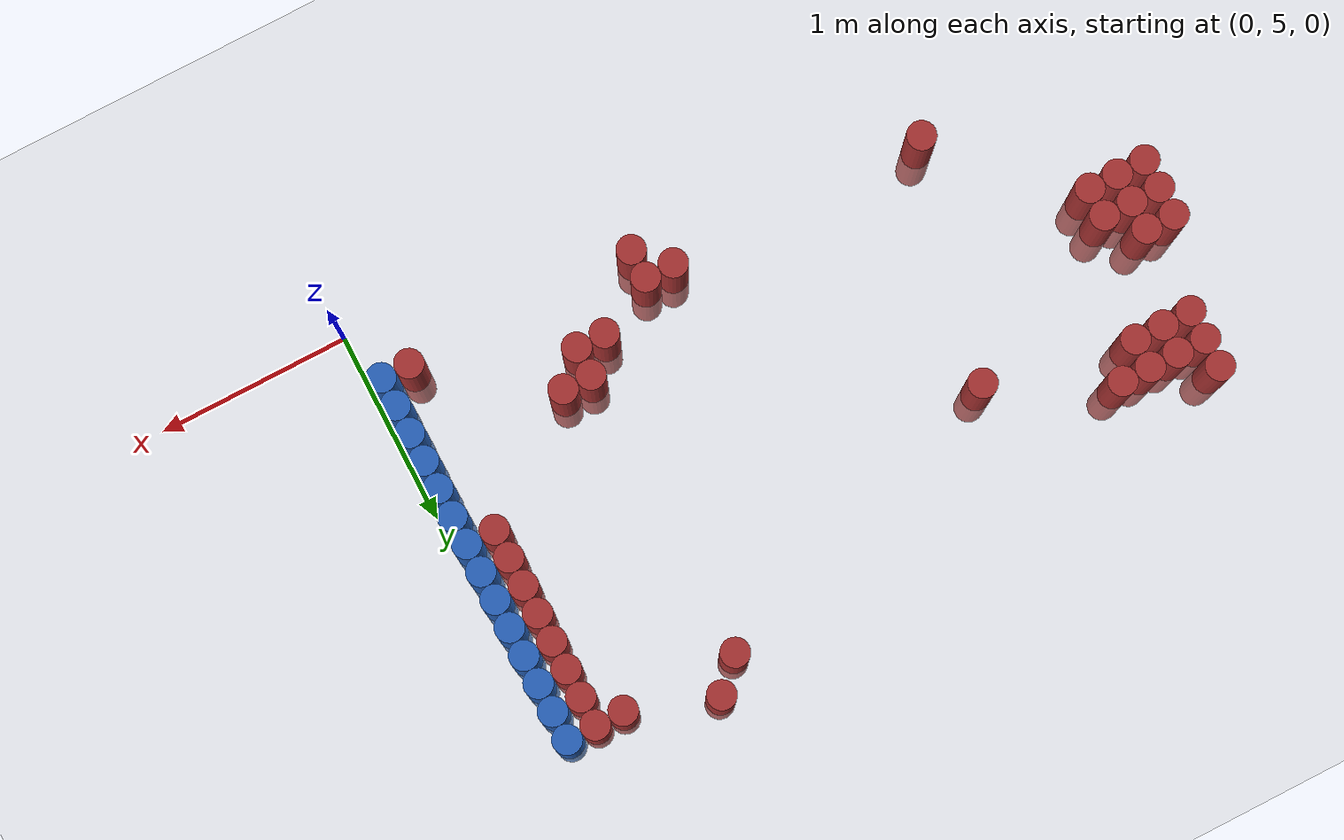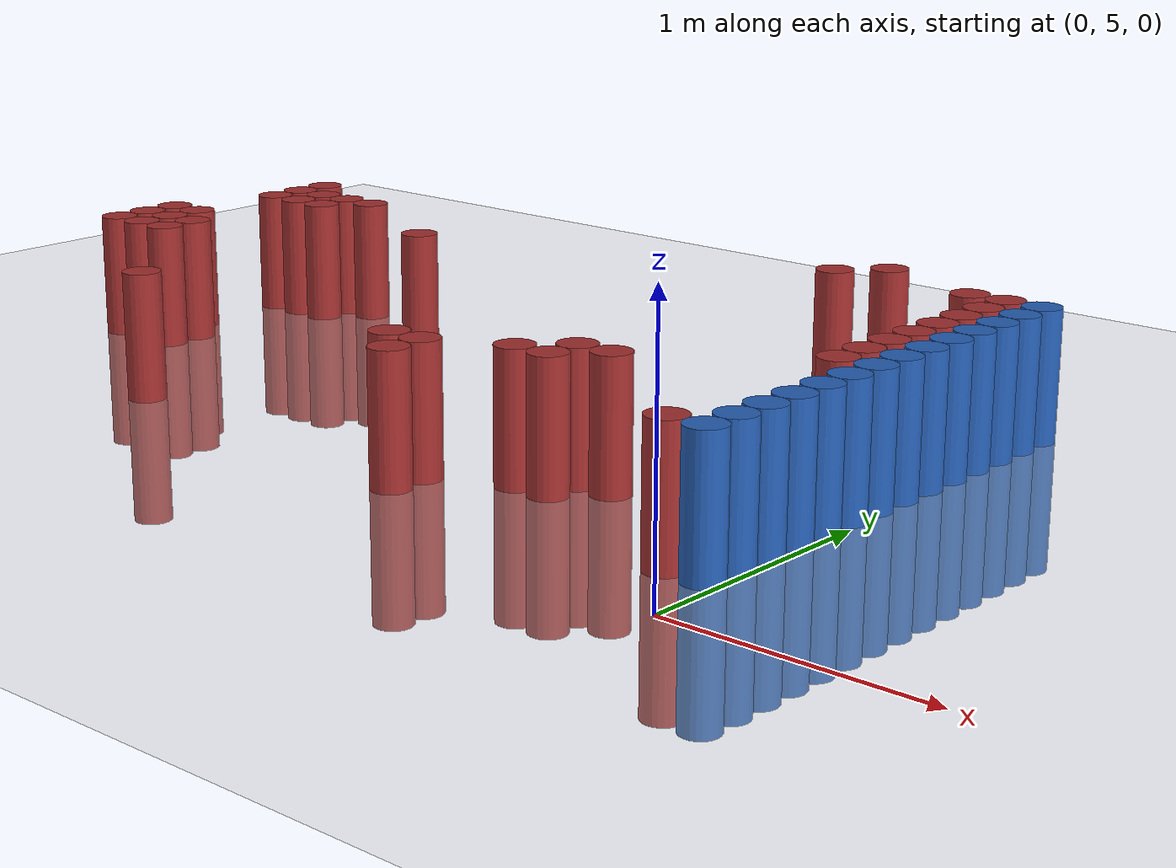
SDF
<sdf version="1.6">
 <world name="default">
  <model name="ground_plane">
   <static>1</static>
   <link name="link">
    <collision name="collision">
     <geometry><plane><normal>0 0 1</normal><size>100 100</size></plane></geometry>
     <surface><friction><ode><mu>100</mu><mu2>50</mu2></ode></friction></surface>
    </collision>
    <visual name="visual">
     <cast_shadows>0</cast_shadows>
     <geometry><plane><normal>0 0 1</normal><size>100 100</size></plane></geometry>
     <material>
      <script><uri>file://media/materials/scripts/gazebo.material</uri><name>Gazebo/Grey</name></script>
     </material>
    </visual>
   </link>
  </model>
  <model name="unit_cylinder_152">
   <static>1</static>
   <pose>-3.825000 6.075000 0.000000 0.000000 0.000000 0.000000</pose>
   <link name="link">
    <inertial>
     <mass>1</mass>
     <inertia><ixx>0.145833</ixx><ixy>0</ixy><ixz>0</ixz><iyy>0.145833</iyy><iyz>0</iyz><izz>0.125</izz></inertia>
    </inertial>
    <collision name="collision">
     <geometry><cylinder><radius>0.075000</radius><length>1</length></cylinder></geometry>
    </collision>
    <visual name="visual">
     <geometry><cylinder><radius>0.075000</radius><length>1</length></cylinder></geometry>
     <material>
      <ambient>0.648000 0.192000 0.192000 1</ambient>
      <diffuse>0.648000 0.192000 0.192000 1</diffuse>
     </material>
     <material>
      <script><name>Gazebo/Grey</name><uri>file://media/materials/scripts/gazebo.material</uri></script>
     </material>
    </visual>
   </link>
  </model>
  <model name="unit_cylinder_153">
   <static>1</static>
   <pose>-3.825000 6.225000 0.000000 0.000000 0.000000 0.000000</pose>
   <link name="link">
    <inertial>
     <mass>1</mass>
     <inertia><ixx>0.145833</ixx><ixy>0</ixy><ixz>0</ixz><iyy>0.145833</iyy><iyz>0</iyz><izz>0.125</izz></inertia>
    </inertial>
    <collision name="collision">
     <geometry><cylinder><radius>0.075000</radius><length>1</length></cylinder></geometry>
    </collision>
    <visual name="visual">
     <geometry><cylinder><radius>0.075000</radius><length>1</length></cylinder></geometry>
     <material>
      <ambient>0.648000 0.192000 0.192000 1</ambient>
      <diffuse>0.648000 0.192000 0.192000 1</diffuse>
     </material>
     <material>
      <script><name>Gazebo/Grey</name><uri>file://media/materials/scripts/gazebo.material</uri></script>
     </material>
    </visual>
   </link>
  </model>
  <model name="unit_cylinder_154">
   <static>1</static>
   <pose>-3.825000 6.375000 0.000000 0.000000 0.000000 0.000000</pose>
   <link name="link">
    <inertial>
     <mass>1</mass>
     <inertia><ixx>0.145833</ixx><ixy>0</ixy><ixz>0</ixz><iyy>0.145833</iyy><iyz>0</iyz><izz>0.125</izz></inertia>
    </inertial>
    <collision name="collision">
     <geometry><cylinder><radius>0.075000</radius><length>1</length></cylinder></geometry>
    </collision>
    <visual name="visual">
     <geometry><cylinder><radius>0.075000</radius><length>1</length></cylinder></geometry>
     <material>
      <ambient>0.648000 0.192000 0.192000 1</ambient>
      <diffuse>0.648000 0.192000 0.192000 1</diffuse>
     </material>
     <material>
      <script><name>Gazebo/Grey</name><uri>file://media/materials/scripts/gazebo.material</uri></script>
     </material>
    </visual>
   </link>
  </model>
  <model name="unit_cylinder_156">
   <static>1</static>
   <pose>-3.675000 6.075000 0.000000 0.000000 0.000000 0.000000</pose>
   <link name="link">
    <inertial>
     <mass>1</mass>
     <inertia><ixx>0.145833</ixx><ixy>0</ixy><ixz>0</ixz><iyy>0.145833</iyy><iyz>0</iyz><izz>0.125</izz></inertia>
    </inertial>
    <collision name="collision">
     <geometry><cylinder><radius>0.075000</radius><length>1</length></cylinder></geometry>
    </collision>
    <visual name="visual">
     <geometry><cylinder><radius>0.075000</radius><length>1</length></cylinder></geometry>
     <material>
      <ambient>0.648000 0.192000 0.192000 1</ambient>
      <diffuse>0.648000 0.192000 0.192000 1</diffuse>
     </material>
     <material>
      <script><name>Gazebo/Grey</name><uri>file://media/materials/scripts/gazebo.material</uri></script>
     </material>
    </visual>
   </link>
  </model>
  <model name="unit_cylinder_157">
   <static>1</static>
   <pose>-3.675000 6.225000 0.000000 0.000000 0.000000 0.000000</pose>
   <link name="link">
    <inertial>
     <mass>1</mass>
     <inertia><ixx>0.145833</ixx><ixy>0</ixy><ixz>0</ixz><iyy>0.145833</iyy><iyz>0</iyz><izz>0.125</izz></inertia>
    </inertial>
    <collision name="collision">
     <geometry><cylinder><radius>0.075000</radius><length>1</length></cylinder></geometry>
    </collision>
    <visual name="visual">
     <geometry><cylinder><radius>0.075000</radius><length>1</length></cylinder></geometry>
     <material>
      <ambient>0.648000 0.192000 0.192000 1</ambient>
      <diffuse>0.648000 0.192000 0.192000 1</diffuse>
     </material>
     <material>
      <script><name>Gazebo/Grey</name><uri>file://media/materials/scripts/gazebo.material</uri></script>
     </material>
    </visual>
   </link>
  </model>
  <model name="unit_cylinder_158">
   <static>1</static>
   <pose>-3.675000 6.375000 0.000000 0.000000 0.000000 0.000000</pose>
   <link name="link">
    <inertial>
     <mass>1</mass>
     <inertia><ixx>0.145833</ixx><ixy>0</ixy><ixz>0</ixz><iyy>0.145833</iyy><iyz>0</iyz><izz>0.125</izz></inertia>
    </inertial>
    <collision name="collision">
     <geometry><cylinder><radius>0.075000</radius><length>1</length></cylinder></geometry>
    </collision>
    <visual name="visual">
     <geometry><cylinder><radius>0.075000</radius><length>1</length></cylinder></geometry>
     <material>
      <ambient>0.648000 0.192000 0.192000 1</ambient>
      <diffuse>0.648000 0.192000 0.192000 1</diffuse>
     </material>
     <material>
      <script><name>Gazebo/Grey</name><uri>file://media/materials/scripts/gazebo.material</uri></script>
     </material>
    </visual>
   </link>
  </model>
  <model name="unit_cylinder_159">
   <static>1</static>
   <pose>-3.675000 6.825000 0.000000 0.000000 0.000000 0.000000</pose>
   <link name="link">
    <inertial>
     <mass>1</mass>
     <inertia><ixx>0.145833</ixx><ixy>0</ixy><ixz>0</ixz><iyy>0.145833</iyy><iyz>0</iyz><izz>0.125</izz></inertia>
    </inertial>
    <collision name="collision">
     <geometry><cylinder><radius>0.075000</radius><length>1</length></cylinder></geometry>
    </collision>
    <visual name="visual">
     <geometry><cylinder><radius>0.075000</radius><length>1</length></cylinder></geometry>
     <material>
      <ambient>0.648000 0.192000 0.192000 1</ambient>
      <diffuse>0.648000 0.192000 0.192000 1</diffuse>
     </material>
     <material>
      <script><name>Gazebo/Grey</name><uri>file://media/materials/scripts/gazebo.material</uri></script>
     </material>
    </visual>
   </link>
  </model>
  <model name="unit_cylinder_160">
   <static>1</static>
   <pose>-3.675000 6.975000 0.000000 0.000000 0.000000 0.000000</pose>
   <link name="link">
    <inertial>
     <mass>1</mass>
     <inertia><ixx>0.145833</ixx><ixy>0</ixy><ixz>0</ixz><iyy>0.145833</iyy><iyz>0</iyz><izz>0.125</izz></inertia>
    </inertial>
    <collision name="collision">
     <geometry><cylinder><radius>0.075000</radius><length>1</length></cylinder></geometry>
    </collision>
    <visual name="visual">
     <geometry><cylinder><radius>0.075000</radius><length>1</length></cylinder></geometry>
     <material>
      <ambient>0.648000 0.192000 0.192000 1</ambient>
      <diffuse>0.648000 0.192000 0.192000 1</diffuse>
     </material>
     <material>
      <script><name>Gazebo/Grey</name><uri>file://media/materials/scripts/gazebo.material</uri></script>
     </material>
    </visual>
   </link>
  </model>
  <model name="unit_cylinder_161">
   <static>1</static>
   <pose>-3.675000 7.125000 0.000000 0.000000 0.000000 0.000000</pose>
   <link name="link">
    <inertial>
     <mass>1</mass>
     <inertia><ixx>0.145833</ixx><ixy>0</ixy><ixz>0</ixz><iyy>0.145833</iyy><iyz>0</iyz><izz>0.125</izz></inertia>
    </inertial>
    <collision name="collision">
     <geometry><cylinder><radius>0.075000</radius><length>1</length></cylinder></geometry>
    </collision>
    <visual name="visual">
     <geometry><cylinder><radius>0.075000</radius><length>1</length></cylinder></geometry>
     <material>
      <ambient>0.648000 0.192000 0.192000 1</ambient>
      <diffuse>0.648000 0.192000 0.192000 1</diffuse>
     </material>
     <material>
      <script><name>Gazebo/Grey</name><uri>file://media/materials/scripts/gazebo.material</uri></script>
     </material>
    </visual>
   </link>
  </model>
  <model name="unit_cylinder_162">
   <static>1</static>
   <pose>-3.525000 6.075000 0.000000 0.000000 0.000000 0.000000</pose>
   <link name="link">
    <inertial>
     <mass>1</mass>
     <inertia><ixx>0.145833</ixx><ixy>0</ixy><ixz>0</ixz><iyy>0.145833</iyy><iyz>0</iyz><izz>0.125</izz></inertia>
    </inertial>
    <collision name="collision">
     <geometry><cylinder><radius>0.075000</radius><length>1</length></cylinder></geometry>
    </collision>
    <visual name="visual">
     <geometry><cylinder><radius>0.075000</radius><length>1</length></cylinder></geometry>
     <material>
      <ambient>0.648000 0.192000 0.192000 1</ambient>
      <diffuse>0.648000 0.192000 0.192000 1</diffuse>
     </material>
     <material>
      <script><name>Gazebo/Grey</name><uri>file://media/materials/scripts/gazebo.material</uri></script>
     </material>
    </visual>
   </link>
  </model>
  <model name="unit_cylinder_163">
   <static>1</static>
   <pose>-3.525000 6.225000 0.000000 0.000000 0.000000 0.000000</pose>
   <link name="link">
    <inertial>
     <mass>1</mass>
     <inertia><ixx>0.145833</ixx><ixy>0</ixy><ixz>0</ixz><iyy>0.145833</iyy><iyz>0</iyz><izz>0.125</izz></inertia>
    </inertial>
    <collision name="collision">
     <geometry><cylinder><radius>0.075000</radius><length>1</length></cylinder></geometry>
    </collision>
    <visual name="visual">
     <geometry><cylinder><radius>0.075000</radius><length>1</length></cylinder></geometry>
     <material>
      <ambient>0.648000 0.192000 0.192000 1</ambient>
      <diffuse>0.648000 0.192000 0.192000 1</diffuse>
     </material>
     <material>
      <script><name>Gazebo/Grey</name><uri>file://media/materials/scripts/gazebo.material</uri></script>
     </material>
    </visual>
   </link>
  </model>
  <model name="unit_cylinder_164">
   <static>1</static>
   <pose>-3.525000 6.825000 0.000000 0.000000 0.000000 0.000000</pose>
   <link name="link">
    <inertial>
     <mass>1</mass>
     <inertia><ixx>0.145833</ixx><ixy>0</ixy><ixz>0</ixz><iyy>0.145833</iyy><iyz>0</iyz><izz>0.125</izz></inertia>
    </inertial>
    <collision name="collision">
     <geometry><cylinder><radius>0.075000</radius><length>1</length></cylinder></geometry>
    </collision>
    <visual name="visual">
     <geometry><cylinder><radius>0.075000</radius><length>1</length></cylinder></geometry>
     <material>
      <ambient>0.648000 0.192000 0.192000 1</ambient>
      <diffuse>0.648000 0.192000 0.192000 1</diffuse>
     </material>
     <material>
      <script><name>Gazebo/Grey</name><uri>file://media/materials/scripts/gazebo.material</uri></script>
     </material>
    </visual>
   </link>
  </model>
  <model name="unit_cylinder_165">
   <static>1</static>
   <pose>-3.525000 6.975000 0.000000 0.000000 0.000000 0.000000</pose>
   <link name="link">
    <inertial>
     <mass>1</mass>
     <inertia><ixx>0.145833</ixx><ixy>0</ixy><ixz>0</ixz><iyy>0.145833</iyy><iyz>0</iyz><izz>0.125</izz></inertia>
    </inertial>
    <collision name="collision">
     <geometry><cylinder><radius>0.075000</radius><length>1</length></cylinder></geometry>
    </collision>
    <visual name="visual">
     <geometry><cylinder><radius>0.075000</radius><length>1</length></cylinder></geometry>
     <material>
      <ambient>0.648000 0.192000 0.192000 1</ambient>
      <diffuse>0.648000 0.192000 0.192000 1</diffuse>
     </material>
     <material>
      <script><name>Gazebo/Grey</name><uri>file://media/materials/scripts/gazebo.material</uri></script>
     </material>
    </visual>
   </link>
  </model>
  <model name="unit_cylinder_166">
   <static>1</static>
   <pose>-3.375000 6.825000 0.000000 0.000000 0.000000 0.000000</pose>
   <link name="link">
    <inertial>
     <mass>1</mass>
     <inertia><ixx>0.145833</ixx><ixy>0</ixy><ixz>0</ixz><iyy>0.145833</iyy><iyz>0</iyz><izz>0.125</izz></inertia>
    </inertial>
    <collision name="collision">
     <geometry><cylinder><radius>0.075000</radius><length>1</length></cylinder></geometry>
    </collision>
    <visual name="visual">
     <geometry><cylinder><radius>0.075000</radius><length>1</length></cylinder></geometry>
     <material>
      <ambient>0.648000 0.192000 0.192000 1</ambient>
      <diffuse>0.648000 0.192000 0.192000 1</diffuse>
     </material>
     <material>
      <script><name>Gazebo/Grey</name><uri>file://media/materials/scripts/gazebo.material</uri></script>
     </material>
    </visual>
   </link>
  </model>
  <model name="unit_cylinder_167">
   <static>1</static>
   <pose>-3.375000 6.975000 0.000000 0.000000 0.000000 0.000000</pose>
   <link name="link">
    <inertial>
     <mass>1</mass>
     <inertia><ixx>0.145833</ixx><ixy>0</ixy><ixz>0</ixz><iyy>0.145833</iyy><iyz>0</iyz><izz>0.125</izz></inertia>
    </inertial>
    <collision name="collision">
     <geometry><cylinder><radius>0.075000</radius><length>1</length></cylinder></geometry>
    </collision>
    <visual name="visual">
     <geometry><cylinder><radius>0.075000</radius><length>1</length></cylinder></geometry>
     <material>
      <ambient>0.648000 0.192000 0.192000 1</ambient>
      <diffuse>0.648000 0.192000 0.192000 1</diffuse>
     </material>
     <material>
      <script><name>Gazebo/Grey</name><uri>file://media/materials/scripts/gazebo.material</uri></script>
     </material>
    </visual>
   </link>
  </model>
  <model name="unit_cylinder_168">
   <static>1</static>
   <pose>-3.225000 6.975000 0.000000 0.000000 0.000000 0.000000</pose>
   <link name="link">
    <inertial>
     <mass>1</mass>
     <inertia><ixx>0.145833</ixx><ixy>0</ixy><ixz>0</ixz><iyy>0.145833</iyy><iyz>0</iyz><izz>0.125</izz></inertia>
    </inertial>
    <collision name="collision">
     <geometry><cylinder><radius>0.075000</radius><length>1</length></cylinder></geometry>
    </collision>
    <visual name="visual">
     <geometry><cylinder><radius>0.075000</radius><length>1</length></cylinder></geometry>
     <material>
      <ambient>0.648000 0.192000 0.192000 1</ambient>
      <diffuse>0.648000 0.192000 0.192000 1</diffuse>
     </material>
     <material>
      <script><name>Gazebo/Grey</name><uri>file://media/materials/scripts/gazebo.material</uri></script>
     </material>
    </visual>
   </link>
  </model>
  <model name="unit_cylinder_171">
   <static>1</static>
   <pose>-2.925000 5.475000 0.000000 0.000000 0.000000 0.000000</pose>
   <link name="link">
    <inertial>
     <mass>1</mass>
     <inertia><ixx>0.145833</ixx><ixy>0</ixy><ixz>0</ixz><iyy>0.145833</iyy><iyz>0</iyz><izz>0.125</izz></inertia>
    </inertial>
    <collision name="collision">
     <geometry><cylinder><radius>0.075000</radius><length>1</length></cylinder></geometry>
    </collision>
    <visual name="visual">
     <geometry><cylinder><radius>0.075000</radius><length>1</length></cylinder></geometry>
     <material>
      <ambient>0.648000 0.192000 0.192000 1</ambient>
      <diffuse>0.648000 0.192000 0.192000 1</diffuse>
     </material>
     <material>
      <script><name>Gazebo/Grey</name><uri>file://media/materials/scripts/gazebo.material</uri></script>
     </material>
    </visual>
   </link>
  </model>
  <model name="unit_cylinder_175">
   <static>1</static>
   <pose>-2.625000 6.675000 0.000000 0.000000 0.000000 0.000000</pose>
   <link name="link">
    <inertial>
     <mass>1</mass>
     <inertia><ixx>0.145833</ixx><ixy>0</ixy><ixz>0</ixz><iyy>0.145833</iyy><iyz>0</iyz><izz>0.125</izz></inertia>
    </inertial>
    <collision name="collision">
     <geometry><cylinder><radius>0.075000</radius><length>1</length></cylinder></geometry>
    </collision>
    <visual name="visual">
     <geometry><cylinder><radius>0.075000</radius><length>1</length></cylinder></geometry>
     <material>
      <ambient>0.648000 0.192000 0.192000 1</ambient>
      <diffuse>0.648000 0.192000 0.192000 1</diffuse>
     </material>
     <material>
      <script><name>Gazebo/Grey</name><uri>file://media/materials/scripts/gazebo.material</uri></script>
     </material>
    </visual>
   </link>
  </model>
  <model name="unit_cylinder_180">
   <static>1</static>
   <pose>-1.575000 5.475000 0.000000 0.000000 0.000000 0.000000</pose>
   <link name="link">
    <inertial>
     <mass>1</mass>
     <inertia><ixx>0.145833</ixx><ixy>0</ixy><ixz>0</ixz><iyy>0.145833</iyy><iyz>0</iyz><izz>0.125</izz></inertia>
    </inertial>
    <collision name="collision">
     <geometry><cylinder><radius>0.075000</radius><length>1</length></cylinder></geometry>
    </collision>
    <visual name="visual">
     <geometry><cylinder><radius>0.075000</radius><length>1</length></cylinder></geometry>
     <material>
      <ambient>0.648000 0.192000 0.192000 1</ambient>
      <diffuse>0.648000 0.192000 0.192000 1</diffuse>
     </material>
     <material>
      <script><name>Gazebo/Grey</name><uri>file://media/materials/scripts/gazebo.material</uri></script>
     </material>
    </visual>
   </link>
  </model>
  <model name="unit_cylinder_181">
   <static>1</static>
   <pose>-1.425000 5.325000 0.000000 0.000000 0.000000 0.000000</pose>
   <link name="link">
    <inertial>
     <mass>1</mass>
     <inertia><ixx>0.145833</ixx><ixy>0</ixy><ixz>0</ixz><iyy>0.145833</iyy><iyz>0</iyz><izz>0.125</izz></inertia>
    </inertial>
    <collision name="collision">
     <geometry><cylinder><radius>0.075000</radius><length>1</length></cylinder></geometry>
    </collision>
    <visual name="visual">
     <geometry><cylinder><radius>0.075000</radius><length>1</length></cylinder></geometry>
     <material>
      <ambient>0.648000 0.192000 0.192000 1</ambient>
      <diffuse>0.648000 0.192000 0.192000 1</diffuse>
     </material>
     <material>
      <script><name>Gazebo/Grey</name><uri>file://media/materials/scripts/gazebo.material</uri></script>
     </material>
    </visual>
   </link>
  </model>
  <model name="unit_cylinder_182">
   <static>1</static>
   <pose>-1.425000 5.475000 0.000000 0.000000 0.000000 0.000000</pose>
   <link name="link">
    <inertial>
     <mass>1</mass>
     <inertia><ixx>0.145833</ixx><ixy>0</ixy><ixz>0</ixz><iyy>0.145833</iyy><iyz>0</iyz><izz>0.125</izz></inertia>
    </inertial>
    <collision name="collision">
     <geometry><cylinder><radius>0.075000</radius><length>1</length></cylinder></geometry>
    </collision>
    <visual name="visual">
     <geometry><cylinder><radius>0.075000</radius><length>1</length></cylinder></geometry>
     <material>
      <ambient>0.648000 0.192000 0.192000 1</ambient>
      <diffuse>0.648000 0.192000 0.192000 1</diffuse>
     </material>
     <material>
      <script><name>Gazebo/Grey</name><uri>file://media/materials/scripts/gazebo.material</uri></script>
     </material>
    </visual>
   </link>
  </model>
  <model name="unit_cylinder_183">
   <static>1</static>
   <pose>-1.125000 5.625000 0.000000 0.000000 0.000000 0.000000</pose>
   <link name="link">
    <inertial>
     <mass>1</mass>
     <inertia><ixx>0.145833</ixx><ixy>0</ixy><ixz>0</ixz><iyy>0.145833</iyy><iyz>0</iyz><izz>0.125</izz></inertia>
    </inertial>
    <collision name="collision">
     <geometry><cylinder><radius>0.075000</radius><length>1</length></cylinder></geometry>
    </collision>
    <visual name="visual">
     <geometry><cylinder><radius>0.075000</radius><length>1</length></cylinder></geometry>
     <material>
      <ambient>0.648000 0.192000 0.192000 1</ambient>
      <diffuse>0.648000 0.192000 0.192000 1</diffuse>
     </material>
     <material>
      <script><name>Gazebo/Grey</name><uri>file://media/materials/scripts/gazebo.material</uri></script>
     </material>
    </visual>
   </link>
  </model>
  <model name="unit_cylinder_184">
   <static>1</static>
   <pose>-0.975000 5.625000 0.000000 0.000000 0.000000 0.000000</pose>
   <link name="link">
    <inertial>
     <mass>1</mass>
     <inertia><ixx>0.145833</ixx><ixy>0</ixy><ixz>0</ixz><iyy>0.145833</iyy><iyz>0</iyz><izz>0.125</izz></inertia>
    </inertial>
    <collision name="collision">
     <geometry><cylinder><radius>0.075000</radius><length>1</length></cylinder></geometry>
    </collision>
    <visual name="visual">
     <geometry><cylinder><radius>0.075000</radius><length>1</length></cylinder></geometry>
     <material>
      <ambient>0.648000 0.192000 0.192000 1</ambient>
      <diffuse>0.648000 0.192000 0.192000 1</diffuse>
     </material>
     <material>
      <script><name>Gazebo/Grey</name><uri>file://media/materials/scripts/gazebo.material</uri></script>
     </material>
    </visual>
   </link>
  </model>
  <model name="unit_cylinder_185">
   <static>1</static>
   <pose>-0.975000 5.775000 0.000000 0.000000 0.000000 0.000000</pose>
   <link name="link">
    <inertial>
     <mass>1</mass>
     <inertia><ixx>0.145833</ixx><ixy>0</ixy><ixz>0</ixz><iyy>0.145833</iyy><iyz>0</iyz><izz>0.125</izz></inertia>
    </inertial>
    <collision name="collision">
     <geometry><cylinder><radius>0.075000</radius><length>1</length></cylinder></geometry>
    </collision>
    <visual name="visual">
     <geometry><cylinder><radius>0.075000</radius><length>1</length></cylinder></geometry>
     <material>
      <ambient>0.648000 0.192000 0.192000 1</ambient>
      <diffuse>0.648000 0.192000 0.192000 1</diffuse>
     </material>
     <material>
      <script><name>Gazebo/Grey</name><uri>file://media/materials/scripts/gazebo.material</uri></script>
     </material>
    </visual>
   </link>
  </model>
  <model name="unit_cylinder_186">
   <static>1</static>
   <pose>-0.975000 7.275000 0.000000 0.000000 0.000000 0.000000</pose>
   <link name="link">
    <inertial>
     <mass>1</mass>
     <inertia><ixx>0.145833</ixx><ixy>0</ixy><ixz>0</ixz><iyy>0.145833</iyy><iyz>0</iyz><izz>0.125</izz></inertia>
    </inertial>
    <collision name="collision">
     <geometry><cylinder><radius>0.075000</radius><length>1</length></cylinder></geometry>
    </collision>
    <visual name="visual">
     <geometry><cylinder><radius>0.075000</radius><length>1</length></cylinder></geometry>
     <material>
      <ambient>0.648000 0.192000 0.192000 1</ambient>
      <diffuse>0.648000 0.192000 0.192000 1</diffuse>
     </material>
     <material>
      <script><name>Gazebo/Grey</name><uri>file://media/materials/scripts/gazebo.material</uri></script>
     </material>
    </visual>
   </link>
  </model>
  <model name="unit_cylinder_187">
   <static>1</static>
   <pose>-0.825000 5.775000 0.000000 0.000000 0.000000 0.000000</pose>
   <link name="link">
    <inertial>
     <mass>1</mass>
     <inertia><ixx>0.145833</ixx><ixy>0</ixy><ixz>0</ixz><iyy>0.145833</iyy><iyz>0</iyz><izz>0.125</izz></inertia>
    </inertial>
    <collision name="collision">
     <geometry><cylinder><radius>0.075000</radius><length>1</length></cylinder></geometry>
    </collision>
    <visual name="visual">
     <geometry><cylinder><radius>0.075000</radius><length>1</length></cylinder></geometry>
     <material>
      <ambient>0.648000 0.192000 0.192000 1</ambient>
      <diffuse>0.648000 0.192000 0.192000 1</diffuse>
     </material>
     <material>
      <script><name>Gazebo/Grey</name><uri>file://media/materials/scripts/gazebo.material</uri></script>
     </material>
    </visual>
   </link>
  </model>
  <model name="unit_cylinder_188">
   <static>1</static>
   <pose>-0.825000 7.425000 0.000000 0.000000 0.000000 0.000000</pose>
   <link name="link">
    <inertial>
     <mass>1</mass>
     <inertia><ixx>0.145833</ixx><ixy>0</ixy><ixz>0</ixz><iyy>0.145833</iyy><iyz>0</iyz><izz>0.125</izz></inertia>
    </inertial>
    <collision name="collision">
     <geometry><cylinder><radius>0.075000</radius><length>1</length></cylinder></geometry>
    </collision>
    <visual name="visual">
     <geometry><cylinder><radius>0.075000</radius><length>1</length></cylinder></geometry>
     <material>
      <ambient>0.648000 0.192000 0.192000 1</ambient>
      <diffuse>0.648000 0.192000 0.192000 1</diffuse>
     </material>
     <material>
      <script><name>Gazebo/Grey</name><uri>file://media/materials/scripts/gazebo.material</uri></script>
     </material>
    </visual>
   </link>
  </model>
  <model name="unit_cylinder_196">
   <static>1</static>
   <pose>-0.375000 7.275000 0.000000 0.000000 0.000000 0.000000</pose>
   <link name="link">
    <inertial>
     <mass>1</mass>
     <inertia><ixx>0.145833</ixx><ixy>0</ixy><ixz>0</ixz><iyy>0.145833</iyy><iyz>0</iyz><izz>0.125</izz></inertia>
    </inertial>
    <collision name="collision">
     <geometry><cylinder><radius>0.075000</radius><length>1</length></cylinder></geometry>
    </collision>
    <visual name="visual">
     <geometry><cylinder><radius>0.075000</radius><length>1</length></cylinder></geometry>
     <material>
      <ambient>0.648000 0.192000 0.192000 1</ambient>
      <diffuse>0.648000 0.192000 0.192000 1</diffuse>
     </material>
     <material>
      <script><name>Gazebo/Grey</name><uri>file://media/materials/scripts/gazebo.material</uri></script>
     </material>
    </visual>
   </link>
  </model>
  <model name="unit_cylinder_201">
   <static>1</static>
   <pose>-0.225000 5.325000 0.000000 0.000000 0.000000 0.000000</pose>
   <link name="link">
    <inertial>
     <mass>1</mass>
     <inertia><ixx>0.145833</ixx><ixy>0</ixy><ixz>0</ixz><iyy>0.145833</iyy><iyz>0</iyz><izz>0.125</izz></inertia>
    </inertial>
    <collision name="collision">
     <geometry><cylinder><radius>0.075000</radius><length>1</length></cylinder></geometry>
    </collision>
    <visual name="visual">
     <geometry><cylinder><radius>0.075000</radius><length>1</length></cylinder></geometry>
     <material>
      <ambient>0.648000 0.192000 0.192000 1</ambient>
      <diffuse>0.648000 0.192000 0.192000 1</diffuse>
     </material>
     <material>
      <script><name>Gazebo/Grey</name><uri>file://media/materials/scripts/gazebo.material</uri></script>
     </material>
    </visual>
   </link>
  </model>
  <model name="unit_cylinder_202">
   <static>1</static>
   <pose>-0.225000 6.225000 0.000000 0.000000 0.000000 0.000000</pose>
   <link name="link">
    <inertial>
     <mass>1</mass>
     <inertia><ixx>0.145833</ixx><ixy>0</ixy><ixz>0</ixz><iyy>0.145833</iyy><iyz>0</iyz><izz>0.125</izz></inertia>
    </inertial>
    <collision name="collision">
     <geometry><cylinder><radius>0.075000</radius><length>1</length></cylinder></geometry>
    </collision>
    <visual name="visual">
     <geometry><cylinder><radius>0.075000</radius><length>1</length></cylinder></geometry>
     <material>
      <ambient>0.648000 0.192000 0.192000 1</ambient>
      <diffuse>0.648000 0.192000 0.192000 1</diffuse>
     </material>
     <material>
      <script><name>Gazebo/Grey</name><uri>file://media/materials/scripts/gazebo.material</uri></script>
     </material>
    </visual>
   </link>
  </model>
  <model name="unit_cylinder_203">
   <static>1</static>
   <pose>-0.225000 6.375000 0.000000 0.000000 0.000000 0.000000</pose>
   <link name="link">
    <inertial>
     <mass>1</mass>
     <inertia><ixx>0.145833</ixx><ixy>0</ixy><ixz>0</ixz><iyy>0.145833</iyy><iyz>0</iyz><izz>0.125</izz></inertia>
    </inertial>
    <collision name="collision">
     <geometry><cylinder><radius>0.075000</radius><length>1</length></cylinder></geometry>
    </collision>
    <visual name="visual">
     <geometry><cylinder><radius>0.075000</radius><length>1</length></cylinder></geometry>
     <material>
      <ambient>0.648000 0.192000 0.192000 1</ambient>
      <diffuse>0.648000 0.192000 0.192000 1</diffuse>
     </material>
     <material>
      <script><name>Gazebo/Grey</name><uri>file://media/materials/scripts/gazebo.material</uri></script>
     </material>
    </visual>
   </link>
  </model>
  <model name="unit_cylinder_204">
   <static>1</static>
   <pose>-0.225000 6.525000 0.000000 0.000000 0.000000 0.000000</pose>
   <link name="link">
    <inertial>
     <mass>1</mass>
     <inertia><ixx>0.145833</ixx><ixy>0</ixy><ixz>0</ixz><iyy>0.145833</iyy><iyz>0</iyz><izz>0.125</izz></inertia>
    </inertial>
    <collision name="collision">
     <geometry><cylinder><radius>0.075000</radius><length>1</length></cylinder></geometry>
    </collision>
    <visual name="visual">
     <geometry><cylinder><radius>0.075000</radius><length>1</length></cylinder></geometry>
     <material>
      <ambient>0.648000 0.192000 0.192000 1</ambient>
      <diffuse>0.648000 0.192000 0.192000 1</diffuse>
     </material>
     <material>
      <script><name>Gazebo/Grey</name><uri>file://media/materials/scripts/gazebo.material</uri></script>
     </material>
    </visual>
   </link>
  </model>
  <model name="unit_cylinder_205">
   <static>1</static>
   <pose>-0.225000 6.675000 0.000000 0.000000 0.000000 0.000000</pose>
   <link name="link">
    <inertial>
     <mass>1</mass>
     <inertia><ixx>0.145833</ixx><ixy>0</ixy><ixz>0</ixz><iyy>0.145833</iyy><iyz>0</iyz><izz>0.125</izz></inertia>
    </inertial>
    <collision name="collision">
     <geometry><cylinder><radius>0.075000</radius><length>1</length></cylinder></geometry>
    </collision>
    <visual name="visual">
     <geometry><cylinder><radius>0.075000</radius><length>1</length></cylinder></geometry>
     <material>
      <ambient>0.648000 0.192000 0.192000 1</ambient>
      <diffuse>0.648000 0.192000 0.192000 1</diffuse>
     </material>
     <material>
      <script><name>Gazebo/Grey</name><uri>file://media/materials/scripts/gazebo.material</uri></script>
     </material>
    </visual>
   </link>
  </model>
  <model name="unit_cylinder_206">
   <static>1</static>
   <pose>-0.225000 6.825000 0.000000 0.000000 0.000000 0.000000</pose>
   <link name="link">
    <inertial>
     <mass>1</mass>
     <inertia><ixx>0.145833</ixx><ixy>0</ixy><ixz>0</ixz><iyy>0.145833</iyy><iyz>0</iyz><izz>0.125</izz></inertia>
    </inertial>
    <collision name="collision">
     <geometry><cylinder><radius>0.075000</radius><length>1</length></cylinder></geometry>
    </collision>
    <visual name="visual">
     <geometry><cylinder><radius>0.075000</radius><length>1</length></cylinder></geometry>
     <material>
      <ambient>0.648000 0.192000 0.192000 1</ambient>
      <diffuse>0.648000 0.192000 0.192000 1</diffuse>
     </material>
     <material>
      <script><name>Gazebo/Grey</name><uri>file://media/materials/scripts/gazebo.material</uri></script>
     </material>
    </visual>
   </link>
  </model>
  <model name="unit_cylinder_207">
   <static>1</static>
   <pose>-0.225000 6.975000 0.000000 0.000000 0.000000 0.000000</pose>
   <link name="link">
    <inertial>
     <mass>1</mass>
     <inertia><ixx>0.145833</ixx><ixy>0</ixy><ixz>0</ixz><iyy>0.145833</iyy><iyz>0</iyz><izz>0.125</izz></inertia>
    </inertial>
    <collision name="collision">
     <geometry><cylinder><radius>0.075000</radius><length>1</length></cylinder></geometry>
    </collision>
    <visual name="visual">
     <geometry><cylinder><radius>0.075000</radius><length>1</length></cylinder></geometry>
     <material>
      <ambient>0.648000 0.192000 0.192000 1</ambient>
      <diffuse>0.648000 0.192000 0.192000 1</diffuse>
     </material>
     <material>
      <script><name>Gazebo/Grey</name><uri>file://media/materials/scripts/gazebo.material</uri></script>
     </material>
    </visual>
   </link>
  </model>
  <model name="unit_cylinder_208">
   <static>1</static>
   <pose>-0.225000 7.125000 0.000000 0.000000 0.000000 0.000000</pose>
   <link name="link">
    <inertial>
     <mass>1</mass>
     <inertia><ixx>0.145833</ixx><ixy>0</ixy><ixz>0</ixz><iyy>0.145833</iyy><iyz>0</iyz><izz>0.125</izz></inertia>
    </inertial>
    <collision name="collision">
     <geometry><cylinder><radius>0.075000</radius><length>1</length></cylinder></geometry>
    </collision>
    <visual name="visual">
     <geometry><cylinder><radius>0.075000</radius><length>1</length></cylinder></geometry>
     <material>
      <ambient>0.648000 0.192000 0.192000 1</ambient>
      <diffuse>0.648000 0.192000 0.192000 1</diffuse>
     </material>
     <material>
      <script><name>Gazebo/Grey</name><uri>file://media/materials/scripts/gazebo.material</uri></script>
     </material>
    </visual>
   </link>
  </model>
  <model name="unit_cylinder_209">
   <static>1</static>
   <pose>-0.225000 7.275000 0.000000 0.000000 0.000000 0.000000</pose>
   <link name="link">
    <inertial>
     <mass>1</mass>
     <inertia><ixx>0.145833</ixx><ixy>0</ixy><ixz>0</ixz><iyy>0.145833</iyy><iyz>0</iyz><izz>0.125</izz></inertia>
    </inertial>
    <collision name="collision">
     <geometry><cylinder><radius>0.075000</radius><length>1</length></cylinder></geometry>
    </collision>
    <visual name="visual">
     <geometry><cylinder><radius>0.075000</radius><length>1</length></cylinder></geometry>
     <material>
      <ambient>0.648000 0.192000 0.192000 1</ambient>
      <diffuse>0.648000 0.192000 0.192000 1</diffuse>
     </material>
     <material>
      <script><name>Gazebo/Grey</name><uri>file://media/materials/scripts/gazebo.material</uri></script>
     </material>
    </visual>
   </link>
  </model>
  <model name="unit_cylinder_226">
   <static>1</static>
   <pose>-0.075000 5.325000 0.000000 0.000000 0.000000 0.000000</pose>
   <link name="link">
    <inertial>
     <mass>1</mass>
     <inertia><ixx>0.145833</ixx><ixy>0</ixy><ixz>0</ixz><iyy>0.145833</iyy><iyz>0</iyz><izz>0.125</izz></inertia>
    </inertial>
    <collision name="collision">
     <geometry><cylinder><radius>0.075000</radius><length>1</length></cylinder></geometry>
    </collision>
    <visual name="visual">
     <geometry><cylinder><radius>0.075000</radius><length>1</length></cylinder></geometry>
     <material>
      <ambient>0.152000 0.379000 0.720000 1</ambient>
      <diffuse>0.152000 0.379000 0.720000 1</diffuse>
     </material>
     <material>
      <script><name>Gazebo/Grey</name><uri>file://media/materials/scripts/gazebo.material</uri></script>
     </material>
    </visual>
   </link>
  </model>
  <model name="unit_cylinder_227">
   <static>1</static>
   <pose>-0.075000 5.475000 0.000000 0.000000 0.000000 0.000000</pose>
   <link name="link">
    <inertial>
     <mass>1</mass>
     <inertia><ixx>0.145833</ixx><ixy>0</ixy><ixz>0</ixz><iyy>0.145833</iyy><iyz>0</iyz><izz>0.125</izz></inertia>
    </inertial>
    <collision name="collision">
     <geometry><cylinder><radius>0.075000</radius><length>1</length></cylinder></geometry>
    </collision>
    <visual name="visual">
     <geometry><cylinder><radius>0.075000</radius><length>1</length></cylinder></geometry>
     <material>
      <ambient>0.152000 0.379000 0.720000 1</ambient>
      <diffuse>0.152000 0.379000 0.720000 1</diffuse>
     </material>
     <material>
      <script><name>Gazebo/Grey</name><uri>file://media/materials/scripts/gazebo.material</uri></script>
     </material>
    </visual>
   </link>
  </model>
  <model name="unit_cylinder_228">
   <static>1</static>
   <pose>-0.075000 5.625000 0.000000 0.000000 0.000000 0.000000</pose>
   <link name="link">
    <inertial>
     <mass>1</mass>
     <inertia><ixx>0.145833</ixx><ixy>0</ixy><ixz>0</ixz><iyy>0.145833</iyy><iyz>0</iyz><izz>0.125</izz></inertia>
    </inertial>
    <collision name="collision">
     <geometry><cylinder><radius>0.075000</radius><length>1</length></cylinder></geometry>
    </collision>
    <visual name="visual">
     <geometry><cylinder><radius>0.075000</radius><length>1</length></cylinder></geometry>
     <material>
      <ambient>0.152000 0.379000 0.720000 1</ambient>
      <diffuse>0.152000 0.379000 0.720000 1</diffuse>
     </material>
     <material>
      <script><name>Gazebo/Grey</name><uri>file://media/materials/scripts/gazebo.material</uri></script>
     </material>
    </visual>
   </link>
  </model>
  <model name="unit_cylinder_229">
   <static>1</static>
   <pose>-0.075000 5.775000 0.000000 0.000000 0.000000 0.000000</pose>
   <link name="link">
    <inertial>
     <mass>1</mass>
     <inertia><ixx>0.145833</ixx><ixy>0</ixy><ixz>0</ixz><iyy>0.145833</iyy><iyz>0</iyz><izz>0.125</izz></inertia>
    </inertial>
    <collision name="collision">
     <geometry><cylinder><radius>0.075000</radius><length>1</length></cylinder></geometry>
    </collision>
    <visual name="visual">
     <geometry><cylinder><radius>0.075000</radius><length>1</length></cylinder></geometry>
     <material>
      <ambient>0.152000 0.379000 0.720000 1</ambient>
      <diffuse>0.152000 0.379000 0.720000 1</diffuse>
     </material>
     <material>
      <script><name>Gazebo/Grey</name><uri>file://media/materials/scripts/gazebo.material</uri></script>
     </material>
    </visual>
   </link>
  </model>
  <model name="unit_cylinder_230">
   <static>1</static>
   <pose>-0.075000 5.925000 0.000000 0.000000 0.000000 0.000000</pose>
   <link name="link">
    <inertial>
     <mass>1</mass>
     <inertia><ixx>0.145833</ixx><ixy>0</ixy><ixz>0</ixz><iyy>0.145833</iyy><iyz>0</iyz><izz>0.125</izz></inertia>
    </inertial>
    <collision name="collision">
     <geometry><cylinder><radius>0.075000</radius><length>1</length></cylinder></geometry>
    </collision>
    <visual name="visual">
     <geometry><cylinder><radius>0.075000</radius><length>1</length></cylinder></geometry>
     <material>
      <ambient>0.152000 0.379000 0.720000 1</ambient>
      <diffuse>0.152000 0.379000 0.720000 1</diffuse>
     </material>
     <material>
      <script><name>Gazebo/Grey</name><uri>file://media/materials/scripts/gazebo.material</uri></script>
     </material>
    </visual>
   </link>
  </model>
  <model name="unit_cylinder_231">
   <static>1</static>
   <pose>-0.075000 6.075000 0.000000 0.000000 0.000000 0.000000</pose>
   <link name="link">
    <inertial>
     <mass>1</mass>
     <inertia><ixx>0.145833</ixx><ixy>0</ixy><ixz>0</ixz><iyy>0.145833</iyy><iyz>0</iyz><izz>0.125</izz></inertia>
    </inertial>
    <collision name="collision">
     <geometry><cylinder><radius>0.075000</radius><length>1</length></cylinder></geometry>
    </collision>
    <visual name="visual">
     <geometry><cylinder><radius>0.075000</radius><length>1</length></cylinder></geometry>
     <material>
      <ambient>0.152000 0.379000 0.720000 1</ambient>
      <diffuse>0.152000 0.379000 0.720000 1</diffuse>
     </material>
     <material>
      <script><name>Gazebo/Grey</name><uri>file://media/materials/scripts/gazebo.material</uri></script>
     </material>
    </visual>
   </link>
  </model>
  <model name="unit_cylinder_232">
   <static>1</static>
   <pose>-0.075000 6.225000 0.000000 0.000000 0.000000 0.000000</pose>
   <link name="link">
    <inertial>
     <mass>1</mass>
     <inertia><ixx>0.145833</ixx><ixy>0</ixy><ixz>0</ixz><iyy>0.145833</iyy><iyz>0</iyz><izz>0.125</izz></inertia>
    </inertial>
    <collision name="collision">
     <geometry><cylinder><radius>0.075000</radius><length>1</length></cylinder></geometry>
    </collision>
    <visual name="visual">
     <geometry><cylinder><radius>0.075000</radius><length>1</length></cylinder></geometry>
     <material>
      <ambient>0.152000 0.379000 0.720000 1</ambient>
      <diffuse>0.152000 0.379000 0.720000 1</diffuse>
     </material>
     <material>
      <script><name>Gazebo/Grey</name><uri>file://media/materials/scripts/gazebo.material</uri></script>
     </material>
    </visual>
   </link>
  </model>
  <model name="unit_cylinder_233">
   <static>1</static>
   <pose>-0.075000 6.375000 0.000000 0.000000 0.000000 0.000000</pose>
   <link name="link">
    <inertial>
     <mass>1</mass>
     <inertia><ixx>0.145833</ixx><ixy>0</ixy><ixz>0</ixz><iyy>0.145833</iyy><iyz>0</iyz><izz>0.125</izz></inertia>
    </inertial>
    <collision name="collision">
     <geometry><cylinder><radius>0.075000</radius><length>1</length></cylinder></geometry>
    </collision>
    <visual name="visual">
     <geometry><cylinder><radius>0.075000</radius><length>1</length></cylinder></geometry>
     <material>
      <ambient>0.152000 0.379000 0.720000 1</ambient>
      <diffuse>0.152000 0.379000 0.720000 1</diffuse>
     </material>
     <material>
      <script><name>Gazebo/Grey</name><uri>file://media/materials/scripts/gazebo.material</uri></script>
     </material>
    </visual>
   </link>
  </model>
  <model name="unit_cylinder_234">
   <static>1</static>
   <pose>-0.075000 6.525000 0.000000 0.000000 0.000000 0.000000</pose>
   <link name="link">
    <inertial>
     <mass>1</mass>
     <inertia><ixx>0.145833</ixx><ixy>0</ixy><ixz>0</ixz><iyy>0.145833</iyy><iyz>0</iyz><izz>0.125</izz></inertia>
    </inertial>
    <collision name="collision">
     <geometry><cylinder><radius>0.075000</radius><length>1</length></cylinder></geometry>
    </collision>
    <visual name="visual">
     <geometry><cylinder><radius>0.075000</radius><length>1</length></cylinder></geometry>
     <material>
      <ambient>0.152000 0.379000 0.720000 1</ambient>
      <diffuse>0.152000 0.379000 0.720000 1</diffuse>
     </material>
     <material>
      <script><name>Gazebo/Grey</name><uri>file://media/materials/scripts/gazebo.material</uri></script>
     </material>
    </visual>
   </link>
  </model>
  <model name="unit_cylinder_235">
   <static>1</static>
   <pose>-0.075000 6.675000 0.000000 0.000000 0.000000 0.000000</pose>
   <link name="link">
    <inertial>
     <mass>1</mass>
     <inertia><ixx>0.145833</ixx><ixy>0</ixy><ixz>0</ixz><iyy>0.145833</iyy><iyz>0</iyz><izz>0.125</izz></inertia>
    </inertial>
    <collision name="collision">
     <geometry><cylinder><radius>0.075000</radius><length>1</length></cylinder></geometry>
    </collision>
    <visual name="visual">
     <geometry><cylinder><radius>0.075000</radius><length>1</length></cylinder></geometry>
     <material>
      <ambient>0.152000 0.379000 0.720000 1</ambient>
      <diffuse>0.152000 0.379000 0.720000 1</diffuse>
     </material>
     <material>
      <script><name>Gazebo/Grey</name><uri>file://media/materials/scripts/gazebo.material</uri></script>
     </material>
    </visual>
   </link>
  </model>
  <model name="unit_cylinder_236">
   <static>1</static>
   <pose>-0.075000 6.825000 0.000000 0.000000 0.000000 0.000000</pose>
   <link name="link">
    <inertial>
     <mass>1</mass>
     <inertia><ixx>0.145833</ixx><ixy>0</ixy><ixz>0</ixz><iyy>0.145833</iyy><iyz>0</iyz><izz>0.125</izz></inertia>
    </inertial>
    <collision name="collision">
     <geometry><cylinder><radius>0.075000</radius><length>1</length></cylinder></geometry>
    </collision>
    <visual name="visual">
     <geometry><cylinder><radius>0.075000</radius><length>1</length></cylinder></geometry>
     <material>
      <ambient>0.152000 0.379000 0.720000 1</ambient>
      <diffuse>0.152000 0.379000 0.720000 1</diffuse>
     </material>
     <material>
      <script><name>Gazebo/Grey</name><uri>file://media/materials/scripts/gazebo.material</uri></script>
     </material>
    </visual>
   </link>
  </model>
  <model name="unit_cylinder_237">
   <static>1</static>
   <pose>-0.075000 6.975000 0.000000 0.000000 0.000000 0.000000</pose>
   <link name="link">
    <inertial>
     <mass>1</mass>
     <inertia><ixx>0.145833</ixx><ixy>0</ixy><ixz>0</ixz><iyy>0.145833</iyy><iyz>0</iyz><izz>0.125</izz></inertia>
    </inertial>
    <collision name="collision">
     <geometry><cylinder><radius>0.075000</radius><length>1</length></cylinder></geometry>
    </collision>
    <visual name="visual">
     <geometry><cylinder><radius>0.075000</radius><length>1</length></cylinder></geometry>
     <material>
      <ambient>0.152000 0.379000 0.720000 1</ambient>
      <diffuse>0.152000 0.379000 0.720000 1</diffuse>
     </material>
     <material>
      <script><name>Gazebo/Grey</name><uri>file://media/materials/scripts/gazebo.material</uri></script>
     </material>
    </visual>
   </link>
  </model>
  <model name="unit_cylinder_238">
   <static>1</static>
   <pose>-0.075000 7.125000 0.000000 0.000000 0.000000 0.000000</pose>
   <link name="link">
    <inertial>
     <mass>1</mass>
     <inertia><ixx>0.145833</ixx><ixy>0</ixy><ixz>0</ixz><iyy>0.145833</iyy><iyz>0</iyz><izz>0.125</izz></inertia>
    </inertial>
    <collision name="collision">
     <geometry><cylinder><radius>0.075000</radius><length>1</length></cylinder></geometry>
    </collision>
    <visual name="visual">
     <geometry><cylinder><radius>0.075000</radius><length>1</length></cylinder></geometry>
     <material>
      <ambient>0.152000 0.379000 0.720000 1</ambient>
      <diffuse>0.152000 0.379000 0.720000 1</diffuse>
     </material>
     <material>
      <script><name>Gazebo/Grey</name><uri>file://media/materials/scripts/gazebo.material</uri></script>
     </material>
    </visual>
   </link>
  </model>
  <model name="unit_cylinder_239">
   <static>1</static>
   <pose>-0.075000 7.275000 0.000000 0.000000 0.000000 0.000000</pose>
   <link name="link">
    <inertial>
     <mass>1</mass>
     <inertia><ixx>0.145833</ixx><ixy>0</ixy><ixz>0</ixz><iyy>0.145833</iyy><iyz>0</iyz><izz>0.125</izz></inertia>
    </inertial>
    <collision name="collision">
     <geometry><cylinder><radius>0.075000</radius><length>1</length></cylinder></geometry>
    </collision>
    <visual name="visual">
     <geometry><cylinder><radius>0.075000</radius><length>1</length></cylinder></geometry>
     <material>
      <ambient>0.152000 0.379000 0.720000 1</ambient>
      <diffuse>0.152000 0.379000 0.720000 1</diffuse>
     </material>
     <material>
      <script><name>Gazebo/Grey</name><uri>file://media/materials/scripts/gazebo.material</uri></script>
     </material>
    </visual>
   </link>
  </model>
 </world>
</sdf>
